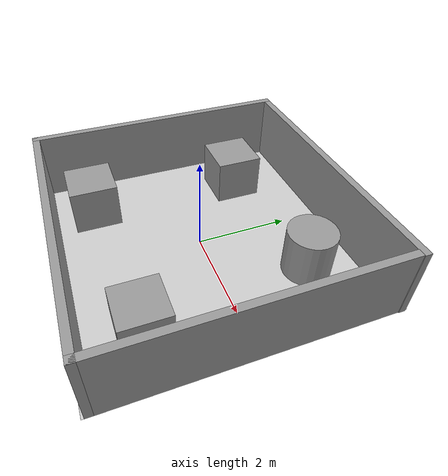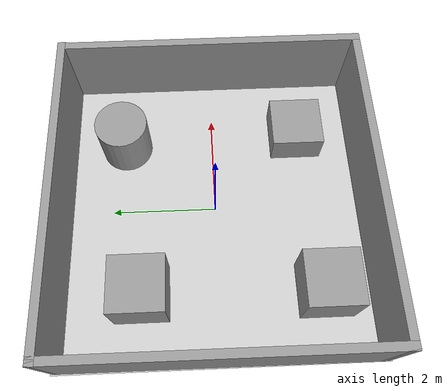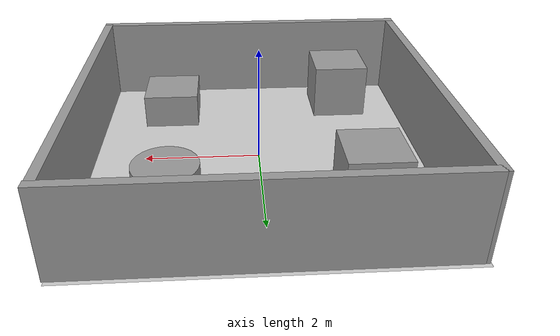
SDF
<sdf version="1.6">
 <world name="default">
  <light name="sun" type="directional">
   <pose>0 0 10 0 -0 0</pose>
   <diffuse>0.8 0.8 0.8 1</diffuse>
   <specular>0.2 0.2 0.2 1</specular>
   <attenuation>
    <range>1000</range>
    <constant>0.9</constant>
    <linear>0.01</linear>
    <quadratic>0.001</quadratic>
   </attenuation>
   <direction>-0.5 0.1 -0.9</direction>
  </light>
  <gravity>0 0 -9.8</gravity>
  <magnetic_field>6e-06 2.3e-05 -4.2e-05</magnetic_field>
  <atmosphere type="adiabatic"/>
  <physics name="default_physics" default="0" type="ode">
   <max_step_size>0.001</max_step_size>
   <real_time_factor>1</real_time_factor>
   <real_time_update_rate>1000</real_time_update_rate>
  </physics>
  <scene><ambient>0.4 0.4 0.4 1</ambient><background>0.7 0.7 0.7 1</background><shadows>1</shadows></scene>
  <audio><device>default</device></audio>
  <spherical_coordinates>
   <surface_model>EARTH_WGS84</surface_model>
   <latitude_deg>0</latitude_deg>
   <longitude_deg>0</longitude_deg>
   <elevation>0</elevation>
   <heading_deg>0</heading_deg>
  </spherical_coordinates>
  <model name="my_ground_plane">
   <static>1</static>
   <link name="link">
    <collision name="collision">
     <geometry><plane><normal>0 0 1</normal><size>1 1</size></plane></geometry>
     <surface><friction><ode><mu>100</mu><mu2>50</mu2></ode></friction></surface>
    </collision>
    <visual name="visual">
     <cast_shadows>0</cast_shadows>
     <geometry><plane><normal>0 0 1</normal><size>6 6</size></plane></geometry>
     <material>
      <script>
       <uri>model://my_ground_plane/materials/scripts</uri>
       <uri>model://my_ground_plane/materials/textures</uri>
       <name>MyGroundPlane/Texture1</name>
      </script>
     </material>
    </visual>
   </link>
  </model>
  <model name="test_map_0">
   <pose>0.014909 -0.0015 0 0 -0 0</pose>
   <link name="Wall_36">
    <collision name="Wall_36_Collision">
     <geometry><box><size>5.75 0.15 1.5</size></box></geometry>
     <pose>0 0 0.75 0 -0 0</pose>
    </collision>
    <visual name="Wall_36_Visual">
     <pose>0 0 0.75 0 -0 0</pose>
     <geometry><box><size>5.75 0.15 1.5</size></box></geometry>
     <material>
      <script><uri>file://media/materials/scripts/gazebo.material</uri><name>Gazebo/Grey</name></script>
      <ambient>1 1 1 1</ambient>
     </material>
     <meta><layer>0</layer></meta>
    </visual>
    <pose>2.91809 -0.0705 0 0 -0 -1.5708</pose>
   </link>
   <link name="Wall_39">
    <collision name="Wall_39_Collision">
     <geometry><box><size>6 0.15 1.5</size></box></geometry>
     <pose>0 0 0.75 0 -0 0</pose>
    </collision>
    <visual name="Wall_39_Visual">
     <pose>0 0 0.75 0 -0 0</pose>
     <geometry><box><size>6 0.15 1.5</size></box></geometry>
     <material>
      <script><uri>file://media/materials/scripts/gazebo.material</uri><name>Gazebo/Grey</name></script>
      <ambient>1 1 1 1</ambient>
     </material>
     <meta><layer>0</layer></meta>
    </visual>
    <pose>0.007091 2.8705 0 0 -0 0</pose>
   </link>
   <link name="Wall_41">
    <collision name="Wall_41_Collision">
     <geometry><box><size>6 0.15 1.5</size></box></geometry>
     <pose>0 0 0.75 0 -0 0</pose>
    </collision>
    <visual name="Wall_41_Visual">
     <pose>0 0 0.75 0 -0 0</pose>
     <geometry><box><size>6 0.15 1.5</size></box></geometry>
     <material>
      <script><uri>file://media/materials/scripts/gazebo.material</uri><name>Gazebo/Grey</name></script>
      <ambient>1 1 1 1</ambient>
     </material>
     <meta><layer>0</layer></meta>
    </visual>
    <pose>-0.006909 -2.8705 0 0 -0 3.14159</pose>
   </link>
   <link name="Wall_42">
    <collision name="Wall_42_Collision">
     <geometry><box><size>5.89096 0.15 1.5</size></box></geometry>
     <pose>0 0 0.75 0 -0 0</pose>
    </collision>
    <visual name="Wall_42_Visual">
     <pose>0 0 0.75 0 -0 0</pose>
     <geometry><box><size>5.89096 0.15 1.5</size></box></geometry>
     <material>
      <script><uri>file://media/materials/scripts/gazebo.material</uri><name>Gazebo/Grey</name></script>
      <ambient>1 1 1 1</ambient>
     </material>
     <meta><layer>0</layer></meta>
    </visual>
    <pose>-2.92491 -0 0 0 -0 1.56836</pose>
   </link>
   <static>1</static>
  </model>
  <model name="unit_box">
   <pose>-1.66222 1.40795 0.5 0 -0 0</pose>
   <link name="link">
    <inertial>
     <mass>1</mass>
     <inertia>
      <ixx>0.166667</ixx>
      <ixy>0</ixy>
      <ixz>0</ixz>
      <iyy>0.166667</iyy>
      <iyz>0</iyz>
      <izz>0.166667</izz>
     </inertia>
    </inertial>
    <collision name="collision"><geometry><box><size>1 1 1</size></box></geometry></collision>
    <visual name="visual">
     <geometry><box><size>1 1 1</size></box></geometry>
     <material>
      <script><name>Gazebo/Grey</name><uri>file://media/materials/scripts/gazebo.material</uri></script>
     </material>
    </visual>
   </link>
  </model>
  <model name="unit_cylinder">
   <pose>1.43985 1.75734 0.5 0 -0 0</pose>
   <link name="link">
    <inertial>
     <mass>1</mass>
     <inertia><ixx>0.145833</ixx><ixy>0</ixy><ixz>0</ixz><iyy>0.145833</iyy><iyz>0</iyz><izz>0.125</izz></inertia>
    </inertial>
    <collision name="collision">
     <geometry><cylinder><radius>0.5</radius><length>1</length></cylinder></geometry>
    </collision>
    <visual name="visual">
     <geometry><cylinder><radius>0.5</radius><length>1</length></cylinder></geometry>
     <material>
      <script><name>Gazebo/Grey</name><uri>file://media/materials/scripts/gazebo.material</uri></script>
     </material>
    </visual>
   </link>
  </model>
  <model name="unit_box_0">
   <pose>-1.69477 -1.94582 0.5 0 -0 0</pose>
   <link name="link">
    <inertial>
     <mass>1</mass>
     <inertia>
      <ixx>0.166667</ixx>
      <ixy>0</ixy>
      <ixz>0</ixz>
      <iyy>0.166667</iyy>
      <iyz>0</iyz>
      <izz>0.166667</izz>
     </inertia>
    </inertial>
    <collision name="collision"><geometry><box><size>1 1 1</size></box></geometry></collision>
    <visual name="visual">
     <geometry><box><size>1 1 1</size></box></geometry>
     <material>
      <script><name>Gazebo/Grey</name><uri>file://media/materials/scripts/gazebo.material</uri></script>
     </material>
    </visual>
   </link>
  </model>
  <model name="unit_box_1">
   <pose>1.60701 -1.69977 0.106527 0 -0 0</pose>
   <link name="link">
    <inertial>
     <mass>1</mass>
     <inertia>
      <ixx>0.166667</ixx>
      <ixy>0</ixy>
      <ixz>0</ixz>
      <iyy>0.166667</iyy>
      <iyz>0</iyz>
      <izz>0.166667</izz>
     </inertia>
    </inertial>
    <collision name="collision"><geometry><box><size>1 1 1</size></box></geometry></collision>
    <visual name="visual">
     <geometry><box><size>1 1 1</size></box></geometry>
     <material>
      <script><name>Gazebo/Grey</name><uri>file://media/materials/scripts/gazebo.material</uri></script>
     </material>
    </visual>
   </link>
  </model>
 </world>
</sdf>
